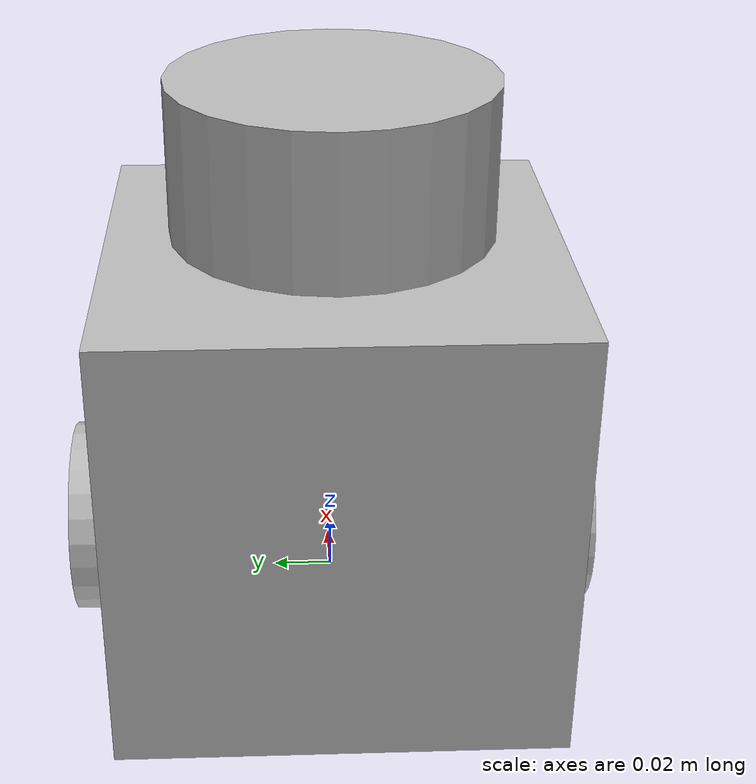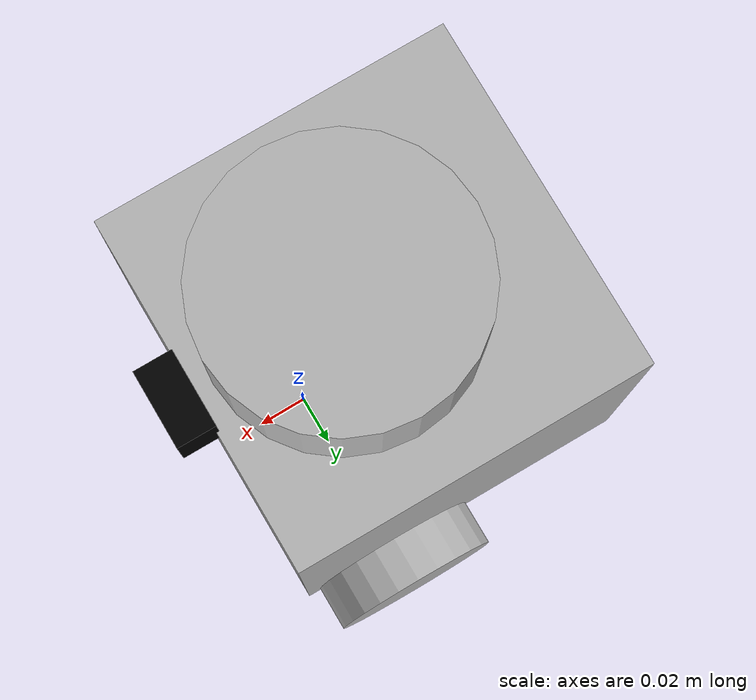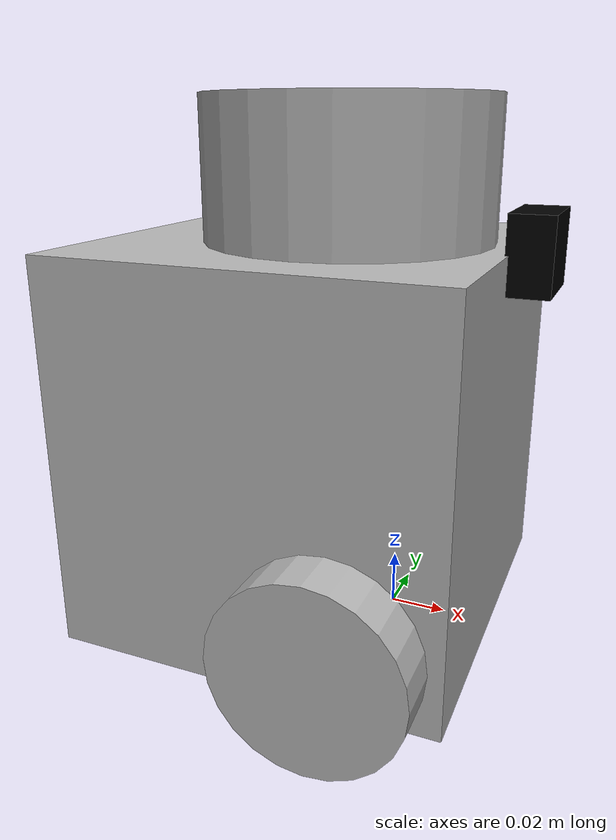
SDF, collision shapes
<?xml version="1.0" ?>
<sdf version="1.7">
  <model name="turtlebot3_burger">
    <pose>0.0 0.0 0.0 0.0 0.0 0.0</pose>

    <link name="base_footprint"/>

    <link name="base_link">

      <inertial>
        <pose>-0.032 0 0.070 0 0 0</pose>
        <inertia>
          <ixx>7.2397393e-01</ixx>
          <ixy>4.686399e-10</ixy>
          <ixz>-1.09525703e-08</ixz>
          <iyy>7.2397393e-01</iyy>
          <iyz>2.8582649e-09</iyz>
          <izz>6.53050163e-01</izz>
        </inertia>
        <mass>8.2573504e-01</mass>
      </inertial>

      <collision name="base_collision">
        <pose>-0.032 0 0.070 0 0 0</pose>
        <geometry>
          <box>
            <size>0.140 0.140 0.140</size>
          </box>
        </geometry>
      </collision>

      <visual name="base_visual">
        <pose>-0.032 0 0 0 0 0</pose>
        <geometry>
          <mesh>
            <uri>model://turtlebot3_burger/meshes/burger_base.dae</uri>
            <scale>0.001 0.001 0.001</scale>
          </mesh>
        </geometry>
      </visual>
    </link>

    <link name="imu_link">
      <sensor name="tb3_imu" type="imu">
        <always_on>true</always_on>
        <update_rate>30</update_rate>
        <imu>
          <angular_velocity>
            <x>
              <noise type="gaussian">
                <mean>0.0</mean>
                <stddev>2e-4</stddev>
              </noise>
            </x>
            <y>
              <noise type="gaussian">
                <mean>0.0</mean>
                <stddev>2e-4</stddev>
              </noise>
            </y>
            <z>
              <noise type="gaussian">
                <mean>0.0</mean>
                <stddev>2e-4</stddev>
              </noise>
            </z>
          </angular_velocity>
          <linear_acceleration>
            <x>
              <noise type="gaussian">
                <mean>0.0</mean>
                <stddev>1.7e-2</stddev>
              </noise>
            </x>
            <y>
              <noise type="gaussian">
                <mean>0.0</mean>
                <stddev>1.7e-2</stddev>
              </noise>
            </y>
            <z>
              <noise type="gaussian">
                <mean>0.0</mean>
                <stddev>1.7e-2</stddev>
              </noise>
            </z>
          </linear_acceleration>
        </imu>
        <plugin name="turtlebot3_imu" filename="libgazebo_ros_imu_sensor.so">
          <ros>
            <remapping>~/out:=imu</remapping>
          </ros>
        </plugin>
      </sensor>
    </link>

    <link name="base_scan">
      <inertial>
        <pose>-0.020 0 0.161 0 0 0</pose>
        <inertia>
          <ixx>0.001</ixx>
          <ixy>0.000</ixy>
          <ixz>0.000</ixz>
          <iyy>0.001</iyy>
          <iyz>0.000</iyz>
          <izz>0.001</izz>
        </inertia>
        <mass>0.114</mass>
      </inertial>

      <collision name="lidar_sensor_collision">
        <pose>-0.020 0 0.161 0 0 0</pose>
        <geometry>
          <cylinder>
            <radius>0.0508</radius>
            <length>0.055</length>
          </cylinder>
        </geometry>
      </collision>

      <visual name="lidar_sensor_visual">
        <pose>-0.032 0 0.171 0 0 0</pose>
        <geometry>
          <mesh>
            <uri>model://turtlebot3_burger/meshes/lds.dae</uri>
            <scale>0.001 0.001 0.001</scale>
          </mesh>
        </geometry>
      </visual>

      <sensor name="hls_lfcd_lds" type="ray">
        <always_on>true</always_on>
        <visualize>true</visualize>
        <pose>-0.032 0 0.171 0 0 0</pose>
        <update_rate>5</update_rate>
        <ray>
          <scan>
            <horizontal>
              <samples>360</samples>
              <resolution>1.000000</resolution>
              <min_angle>0.000000</min_angle>
              <max_angle>6.280000</max_angle>
            </horizontal>
          </scan>
          <range>
            <min>0.120000</min>
            <max>3.5</max>
            <resolution>0.015000</resolution>
          </range>
          <noise>
            <type>gaussian</type>
            <mean>0.0</mean>
            <stddev>0.01</stddev>
          </noise>
        </ray>
        <plugin name="turtlebot3_laserscan" filename="libgazebo_ros_ray_sensor.so">
          <ros>
            <remapping>~/out:=scan</remapping>
            <visualize>false</visualize>
          </ros>
          <output_type>sensor_msgs/LaserScan</output_type>
          <frame_name>base_scan</frame_name>
        </plugin>
      </sensor>
    </link>

    <link name="wheel_left_link">

      <inertial>
        <pose>0 0.08 0.023 -1.57 0 0</pose>
        <inertia>
          <ixx>1.8158194e-03</ixx>
          <ixy>-9.3392e-12</ixy>
          <ixz>1.04909e-11</ixz>
          <iyy>3.2922126e-03</iyy>
          <iyz>5.75694e-11</iyz>
          <izz>1.8158194e-03</izz>
        </inertia>
        <mass>2.8498940e-02</mass>
      </inertial>

      <collision name="wheel_left_collision">
        <pose>0 0.08 0.023 -1.57 0 0</pose>
        <geometry>
          <cylinder>
            <radius>0.033</radius>
            <length>0.018</length>
          </cylinder>
        </geometry>
        <surface>
          <!-- This friction pamareter don't contain reliable data!! -->
          <friction>
            <ode>
              <mu>100000.0</mu>
              <mu2>100000.0</mu2>
              <fdir1>0 0 0</fdir1>
              <slip1>0.0</slip1>
              <slip2>0.0</slip2>
            </ode>
          </friction>
          <contact>
            <ode>
              <soft_cfm>0</soft_cfm>
              <soft_erp>0.2</soft_erp>
              <kp>1e+5</kp>
              <kd>1</kd>
              <max_vel>0.01</max_vel>
              <min_depth>0.001</min_depth>
            </ode>
          </contact>
        </surface>
      </collision>

      <visual name="wheel_left_visual">
        <pose>0 0.08 0.023 0 0 0</pose>
        <geometry>
          <mesh>
            <uri>model://turtlebot3_burger/meshes/tire.dae</uri>
            <scale>0.001 0.001 0.001</scale>
          </mesh>
        </geometry>
      </visual>
    </link>

    <link name="wheel_right_link">

      <inertial>
        <pose>0.0 -0.144 0.023 -1.57 0 0</pose>
        <inertia>
          <ixx>1.8158194e-03</ixx>
          <ixy>-9.3392e-12</ixy>
          <ixz>1.04909e-11</ixz>
          <iyy>3.2922126e-03</iyy>
          <iyz>5.75694e-11</iyz>
          <izz>1.8158194e-03</izz>
        </inertia>
        <mass>2.8498940e-02</mass>
      </inertial>

      <collision name="wheel_right_collision">
        <pose>0.0 -0.08 0.023 -1.57 0 0</pose>
        <geometry>
          <cylinder>
            <radius>0.033</radius>
            <length>0.018</length>
          </cylinder>
        </geometry>
        <surface>
          <!-- This friction pamareter don't contain reliable data!! -->
          <friction>
            <ode>
              <mu>100000.0</mu>
              <mu2>100000.0</mu2>
              <fdir1>0 0 0</fdir1>
              <slip1>0.0</slip1>
              <slip2>0.0</slip2>
            </ode>
          </friction>
          <contact>
            <ode>
              <soft_cfm>0</soft_cfm>
              <soft_erp>0.2</soft_erp>
              <kp>1e+5</kp>
              <kd>1</kd>
              <max_vel>0.01</max_vel>
              <min_depth>0.001</min_depth>
            </ode>
          </contact>
        </surface>
      </collision>

      <visual name="wheel_right_visual">
        <pose>0.0 -0.08 0.023 0 0 0</pose>
        <geometry>
          <mesh>
            <uri>model://turtlebot3_burger/meshes/tire.dae</uri>
            <scale>0.001 0.001 0.001</scale>
          </mesh>
        </geometry>
      </visual>
    </link>

    <link name='caster_back_link'>
      <pose>-0.081 0 -0.004 -1.57 0 0</pose>
      <inertial>
        <mass>0.005</mass>
        <inertia>
          <ixx>0.001</ixx>
          <ixy>0.000</ixy>
          <ixz>0.000</ixz>
          <iyy>0.001</iyy>
          <iyz>0.000</iyz>
          <izz>0.001</izz>
        </inertia>
      </inertial>
      <collision name='collision'>
        <geometry>
          <sphere>
            <radius>0.005000</radius>
          </sphere>
        </geometry>
        <surface>
          <contact>
            <ode>
              <soft_cfm>0</soft_cfm>
              <soft_erp>0.2</soft_erp>
              <kp>1e+5</kp>
              <kd>1</kd>
              <max_vel>0.01</max_vel>
              <min_depth>0.001</min_depth>
            </ode>
          </contact>
        </surface>
      </collision>
    </link>

    <joint name="base_joint" type="fixed">
      <parent>base_footprint</parent>
      <child>base_link</child>
      <pose>0.0 0.0 0.010 0 0 0</pose>
    </joint>

    <joint name="wheel_left_joint" type="revolute">
      <parent>base_link</parent>
      <child>wheel_left_link</child>
      <pose>0.0 0.08 0.023 -1.57 0 0</pose>
      <axis>
        <xyz>0 0 1</xyz>
      </axis>
    </joint>

    <joint name="wheel_right_joint" type="revolute">
      <parent>base_link</parent>
      <child>wheel_right_link</child>
      <pose>0.0 -0.08 0.023 -1.57 0 0</pose>
      <axis>
        <xyz>0 0 1</xyz>
      </axis>
    </joint>

    <joint name='caster_back_joint' type='ball'>
      <parent>base_link</parent>
      <child>caster_back_link</child>
    </joint>

    <joint name="imu_joint" type="fixed">
      <parent>base_link</parent>rear
      <child>imu_link</child>
      <pose>-0.032 0 0.068 0 0 0</pose>
      <axis>
        <xyz>0 0 1</xyz>
      </axis>
    </joint>

    <joint name="lidar_joint" type="fixed">
      <parent>base_link</parent>
      <child>base_scan</child>
      <pose>-0.032 0 0.171 0 0 0</pose>
      <axis>
        <xyz>0 0 1</xyz>
      </axis>
    </joint>

    <plugin name="turtlebot3_diff_drive" filename="libgazebo_ros_diff_drive.so">

      <ros>
         <remapping>/tf:=tf</remapping>
      </ros>

      <update_rate>10</update_rate>

      <!-- wheels -->
      <left_joint>wheel_left_joint</left_joint>
      <right_joint>wheel_right_joint</right_joint>

      <!-- kinematics -->
      <wheel_separation>0.160</wheel_separation>
      <wheel_diameter>0.066</wheel_diameter>

      <!-- limits -->
      <max_wheel_torque>20</max_wheel_torque>
      <max_wheel_acceleration>1.0</max_wheel_acceleration>

      <command_topic>cmd_vel</command_topic>

      <!-- output -->
      <publish_odom>true</publish_odom>
      <publish_odom_tf>true</publish_odom_tf>
      <publish_wheel_tf>false</publish_wheel_tf>

      <odometry_topic>odom</odometry_topic>
      <odometry_frame>odom</odometry_frame>
      <robot_base_frame>base_footprint</robot_base_frame>

    </plugin>

    <plugin name="turtlebot3_joint_state" filename="libgazebo_ros_joint_state_publisher.so">
      <ros>
        <remapping>~/out:=joint_states</remapping>
      </ros>
      <update_rate>30</update_rate>
      <joint_name>wheel_left_joint</joint_name>
      <joint_name>wheel_right_joint</joint_name>
    </plugin>

    <link name="camera_link">
      <pose>0.035 0 0.07 0 0 0</pose>
        <inertial>
          <mass>0.005</mass>
          <inertia>
            <ixx>0.0001</ixx>
            <ixy>0.0</ixy>
            <ixz>0.0</ixz>
            <iyy>0.0001</iyy>
            <iyz>0.0</iyz>
            <izz>0.0001</izz>
          </inertia>
        </inertial>
        <collision name="camera_link_collision">
          <pose>0.0095 0 0.07 0 0 0</pose>
          <geometry>
            <box>
              <size>0.015 0.030 0.026</size>
            </box>
          </geometry>
        </collision>
        <visual name="camera_link_visual">
          <pose>0.0095 0 0.07 0 0 0</pose>
          <geometry>
            <box>
              <size>0.015 0.030 0.026</size>
            </box>
          </geometry>
          <material>
            <ambient>0.0 0.0 0.0 1.0</ambient>
            <diffuse>0.0 0.0 0.0 1.0</diffuse>
          </material>
        </visual>
    </link>
    <joint name="camera_joint" type="fixed">
      <pose> -0.073 -0.011 0.084 0 0 0</pose>
      <parent>base_link</parent>
      <child>camera_link</child>
      <axis>
        <xyz>0 0 1</xyz>
      </axis>
    </joint>

    <link name="camera_rgb_frame"/>
    <joint name="camera_rgb_joint" type="fixed">
      <pose> -0.003 0.011 0.009 0 0 0</pose>
      <parent>camera_link</parent>
      <child>camera_rgb_frame</child>
      <axis>
        <xyz>0 0 1</xyz>
      </axis>
    </joint>

    <link name="camera_rgb_optical_frame">
      <pose> 0 0 0 0 0 0</pose>
      <sensor name="camera" type="camera">
        <always_on>true</always_on>
        <update_rate>30</update_rate>
        <visualize>true</visualize>
        <camera>
          <horizontal_fov>1.047</horizontal_fov>
          <image>
            <width>1280</width>
            <height>720</height>
            <format>R8G8B8</format>
          </image>
          <clip>
            <near>0.5</near>
            <far>10</far>
          </clip>
          <noise>
            <type>gaussian</type>
            <mean>0.0</mean>
            <stddev>0.007</stddev>
          </noise>
        </camera>
        <plugin name="robot_camera" filename="libgazebo_ros_camera.so">
          <ros>
            <remapping>~/image_raw:=image_raw</remapping>
            <remapping>~/camera_info:=camera_info</remapping>
          </ros>
          <always_on>true</always_on>
          <update_rate>30</update_rate>
          <image_raw> camera_image_raw</image_raw>
          <camera_info> camera_info</camera_info>
          <frame_name>camera_rgb_optical_frame</frame_name>
        </plugin>
      </sensor>
    </link>

    <joint name="camera_rgb_optical_joint" type="fixed">
      <pose> 0 0 0 -1.57 0 -1.57</pose>
      <parent>camera_rgb_frame</parent>
      <child>camera_rgb_optical_frame</child>
      <axis>
        <xyz>0 0 1</xyz>
      </axis>
    </joint>

  </model>
</sdf>
